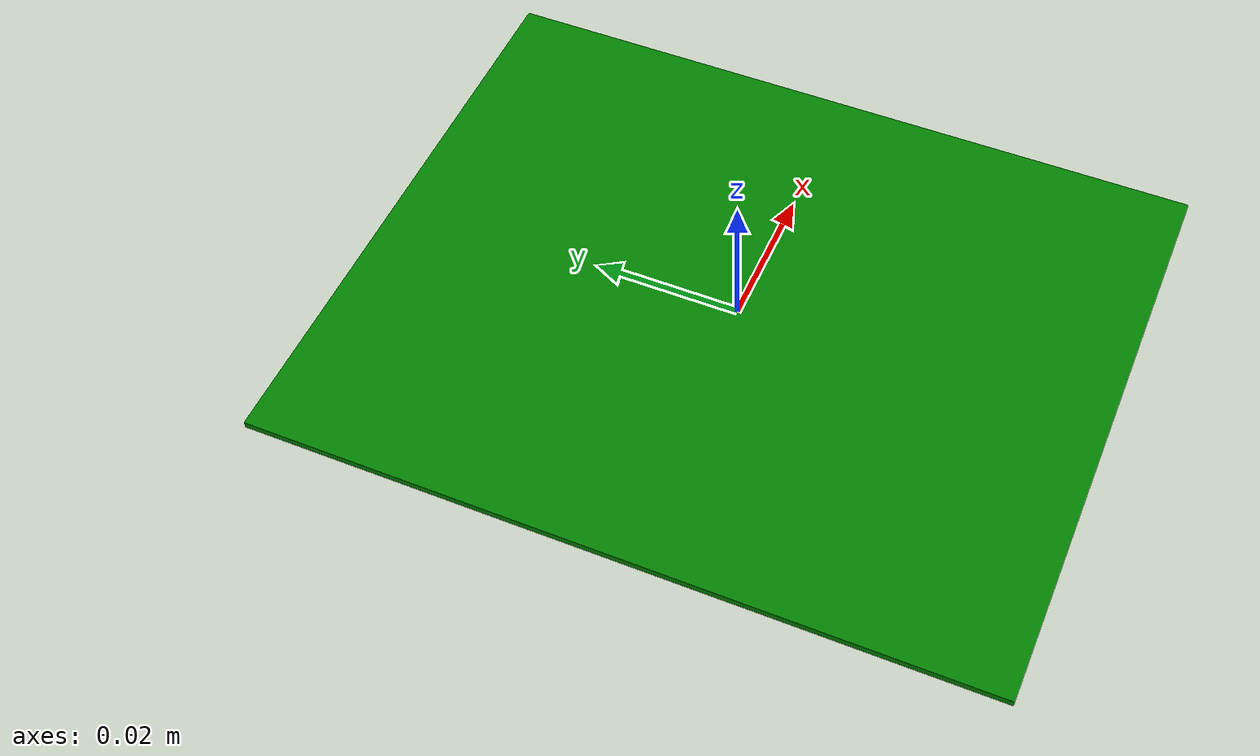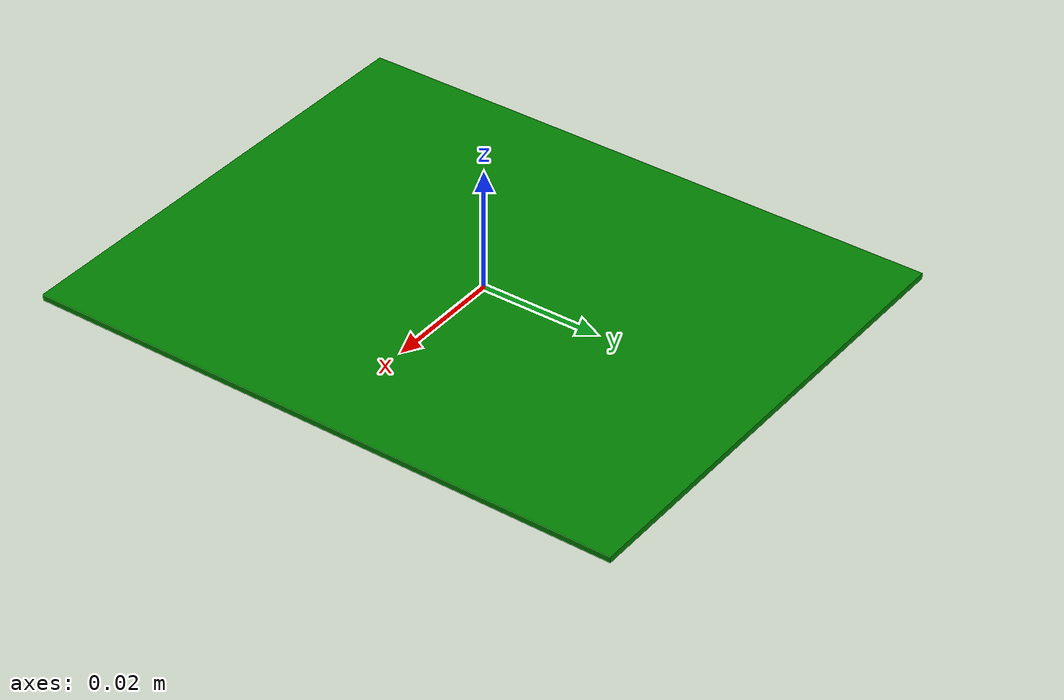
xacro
<?xml version="1.0"?>
<robot xmlns:xacro="http://www.ros.org/wiki/xacro">

  <xacro:include filename="$(find dfrobot_robots)/urdf/materials.xacro" />

  <!-- Wheels -->
  <xacro:property name="wheel_radius" value="0.0325" />
  <xacro:property name="wheel_rim_radius" value="0.025" />
  <xacro:property name="wheel_width" value="0.025" />

  <xacro:macro name="wheel" params="suffix parent *origin">
    <link name="wheel_${suffix}">
      <visual>
        <geometry>
          <cylinder length="${wheel_width}" radius="${wheel_radius}"/>
        </geometry>
        <material name="rubber"/>
      </visual>
      <collision>
        <geometry>
          <cylinder length="${wheel_width}" radius="${wheel_radius}"/>
        </geometry>
      </collision>
      <inertial>
        <mass value="0.2"/>
        <inertia ixx="1e-6" ixy="0" ixz="0" iyy="1e-6" iyz="0" izz="1e-6" />
      </inertial>
    </link>

    <gazebo reference="wheel_${suffix}">
      <mu1 value="200.0"/>
      <mu2 value="100.0"/>
      <kp value="10000000.0" />
      <kd value="1.0" />
      <material>Gazebo/DarkGrey</material>
    </gazebo>

    <joint name="base_to_wheel_${suffix}_joint" type="continuous">
      <parent link="${parent}"/>
      <child link="wheel_${suffix}"/>
      <axis xyz="0 0 1"/>
      <xacro:insert_block name="origin" />
    </joint>

    <transmission name="wheel_${suffix}_trans">
      <type>transmission_interface/SimpleTransmission</type>
      <actuator name="wheel_${suffix}_motor">
        <mechanicalReduction>1</mechanicalReduction>
      </actuator>
      <joint name="base_to_wheel_${suffix}_joint">
        <hardwareInterface>hardware_interface/VelocityJointInterface</hardwareInterface>
      </joint>
    </transmission>

    <link name="wheel_rim_${suffix}">
      <visual>
        <geometry>
          <cylinder length="${0.001+wheel_width}" radius="${wheel_rim_radius}"/>
        </geometry>
        <material name="yellow"/>
      </visual>
      <inertial>
        <mass value="0.1"/>
        <inertia ixx="1e-6" ixy="0" ixz="0" iyy="1e-6" iyz="0" izz="1e-6" />
      </inertial>
    </link>

    <gazebo reference="wheel_rim_${suffix}">
      <material>Gazebo/Yellow</material>
    </gazebo>

    <joint name="wheel_${suffix}_to_rim_joint" type="fixed">
      <parent link="wheel_${suffix}"/>
      <child link="wheel_rim_${suffix}"/>
      <origin rpy="0 0 0" xyz="0 0 0"/>
    </joint>

  </xacro:macro>

  <!-- Control board -->
  <link name="control_board">
    <visual>
      <geometry>
        <box size="0.08 0.1 0.001"/>
      </geometry>
      <material name="green"/>
    </visual>
    <inertial>
      <mass value="0.1"/>
      <inertia ixx="1e-6" ixy="0" ixz="0" iyy="1e-6" iyz="0" izz="1e-6" />
    </inertial>
  </link>

  <gazebo reference="control_board">
    <material>Gazebo/Green</material>
  </gazebo>

  <!-- ros_control plugin -->
  <gazebo>
    <plugin name="gazebo_ros_control" filename="libgazebo_ros_control.so">
      <robotSimType>gazebo_ros_control/DefaultRobotHWSim</robotSimType>
    </plugin>
  </gazebo>

</robot>

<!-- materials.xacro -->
<robot>

 <material name="black">
    <color rgba="0 0 0 1"/>
  </material>

  <material name="yellow">
    <color rgba="1 1 0 1"/>
  </material>

  <material name="green">
    <color rgba="0 0.5 0 1"/>
  </material>

  <material name="silver">
    <color rgba="0.75 0.75 0.75 1"/>
  </material>
  <material name="rubber">
    <color rgba="0.15 0.15 0.15 1"/>
  </material>

</robot>
